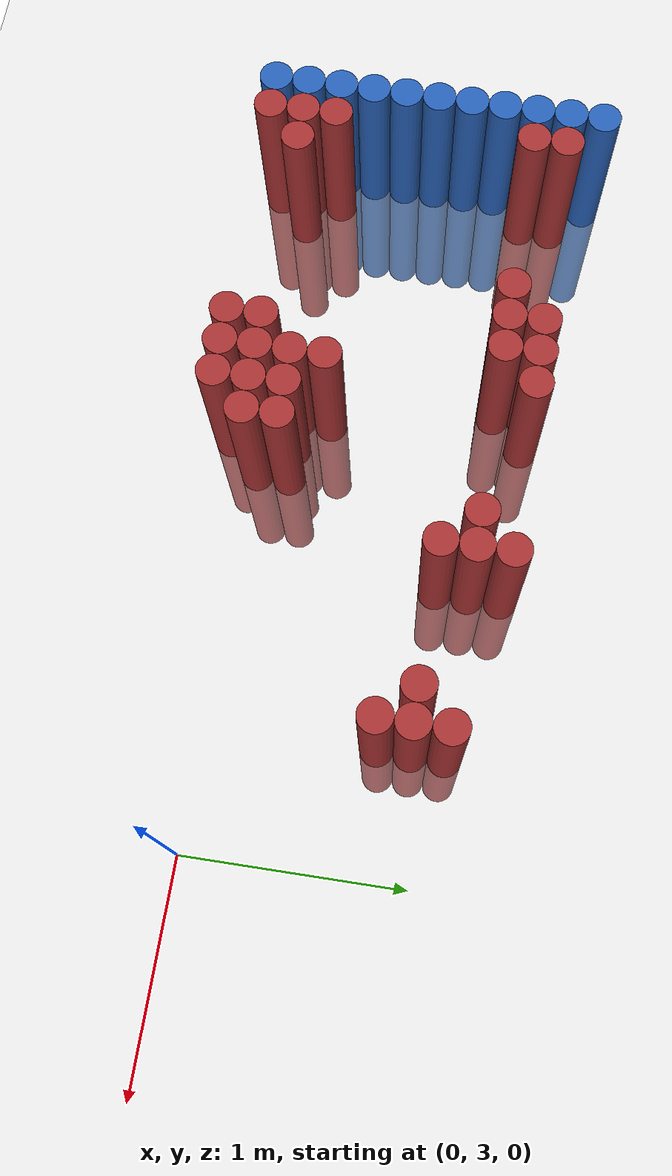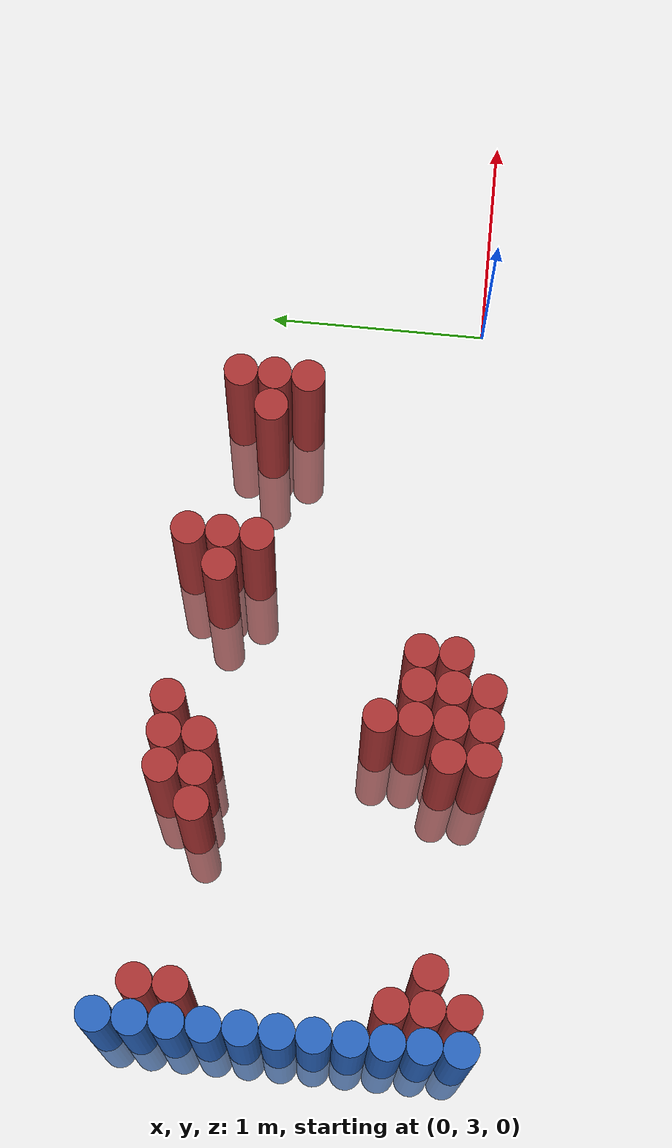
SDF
<sdf version="1.6">
 <world name="default">
  <model name="ground_plane">
   <static>1</static>
   <link name="link">
    <collision name="collision">
     <geometry><plane><normal>0 0 1</normal><size>100 100</size></plane></geometry>
     <surface><friction><ode><mu>100</mu><mu2>50</mu2></ode></friction></surface>
    </collision>
    <visual name="visual">
     <cast_shadows>0</cast_shadows>
     <geometry><plane><normal>0 0 1</normal><size>100 100</size></plane></geometry>
     <material>
      <script><uri>file://media/materials/scripts/gazebo.material</uri><name>Gazebo/Grey</name></script>
     </material>
    </visual>
   </link>
  </model>
  <model name="unit_cylinder_155">
   <static>1</static>
   <pose>-3.425000 3.025000 0.000000 0.000000 0.000000 0.000000</pose>
   <link name="link">
    <inertial>
     <mass>1</mass>
     <inertia><ixx>0.145833</ixx><ixy>0</ixy><ixz>0</ixz><iyy>0.145833</iyy><iyz>0</iyz><izz>0.125</izz></inertia>
    </inertial>
    <collision name="collision">
     <geometry><cylinder><radius>0.075000</radius><length>1.5</length></cylinder></geometry>
    </collision>
    <visual name="visual">
     <geometry><cylinder><radius>0.075000</radius><length>1.5</length></cylinder></geometry>
     <material>
      <ambient>0.152000 0.379000 0.720000 1</ambient>
      <diffuse>0.152000 0.379000 0.720000 1</diffuse>
     </material>
     <material>
      <script><name>Gazebo/Grey</name><uri>file://media/materials/scripts/gazebo.material</uri></script>
     </material>
    </visual>
   </link>
  </model>
  <model name="unit_cylinder_157">
   <static>1</static>
   <pose>-3.425000 3.175000 0.000000 0.000000 0.000000 0.000000</pose>
   <link name="link">
    <inertial>
     <mass>1</mass>
     <inertia><ixx>0.145833</ixx><ixy>0</ixy><ixz>0</ixz><iyy>0.145833</iyy><iyz>0</iyz><izz>0.125</izz></inertia>
    </inertial>
    <collision name="collision">
     <geometry><cylinder><radius>0.075000</radius><length>1.5</length></cylinder></geometry>
    </collision>
    <visual name="visual">
     <geometry><cylinder><radius>0.075000</radius><length>1.5</length></cylinder></geometry>
     <material>
      <ambient>0.152000 0.379000 0.720000 1</ambient>
      <diffuse>0.152000 0.379000 0.720000 1</diffuse>
     </material>
     <material>
      <script><name>Gazebo/Grey</name><uri>file://media/materials/scripts/gazebo.material</uri></script>
     </material>
    </visual>
   </link>
  </model>
  <model name="unit_cylinder_159">
   <static>1</static>
   <pose>-3.425000 3.325000 0.000000 0.000000 0.000000 0.000000</pose>
   <link name="link">
    <inertial>
     <mass>1</mass>
     <inertia><ixx>0.145833</ixx><ixy>0</ixy><ixz>0</ixz><iyy>0.145833</iyy><iyz>0</iyz><izz>0.125</izz></inertia>
    </inertial>
    <collision name="collision">
     <geometry><cylinder><radius>0.075000</radius><length>1.5</length></cylinder></geometry>
    </collision>
    <visual name="visual">
     <geometry><cylinder><radius>0.075000</radius><length>1.5</length></cylinder></geometry>
     <material>
      <ambient>0.152000 0.379000 0.720000 1</ambient>
      <diffuse>0.152000 0.379000 0.720000 1</diffuse>
     </material>
     <material>
      <script><name>Gazebo/Grey</name><uri>file://media/materials/scripts/gazebo.material</uri></script>
     </material>
    </visual>
   </link>
  </model>
  <model name="unit_cylinder_161">
   <static>1</static>
   <pose>-3.425000 3.475000 0.000000 0.000000 0.000000 0.000000</pose>
   <link name="link">
    <inertial>
     <mass>1</mass>
     <inertia><ixx>0.145833</ixx><ixy>0</ixy><ixz>0</ixz><iyy>0.145833</iyy><iyz>0</iyz><izz>0.125</izz></inertia>
    </inertial>
    <collision name="collision">
     <geometry><cylinder><radius>0.075000</radius><length>1.5</length></cylinder></geometry>
    </collision>
    <visual name="visual">
     <geometry><cylinder><radius>0.075000</radius><length>1.5</length></cylinder></geometry>
     <material>
      <ambient>0.152000 0.379000 0.720000 1</ambient>
      <diffuse>0.152000 0.379000 0.720000 1</diffuse>
     </material>
     <material>
      <script><name>Gazebo/Grey</name><uri>file://media/materials/scripts/gazebo.material</uri></script>
     </material>
    </visual>
   </link>
  </model>
  <model name="unit_cylinder_163">
   <static>1</static>
   <pose>-3.425000 3.625000 0.000000 0.000000 0.000000 0.000000</pose>
   <link name="link">
    <inertial>
     <mass>1</mass>
     <inertia><ixx>0.145833</ixx><ixy>0</ixy><ixz>0</ixz><iyy>0.145833</iyy><iyz>0</iyz><izz>0.125</izz></inertia>
    </inertial>
    <collision name="collision">
     <geometry><cylinder><radius>0.075000</radius><length>1.5</length></cylinder></geometry>
    </collision>
    <visual name="visual">
     <geometry><cylinder><radius>0.075000</radius><length>1.5</length></cylinder></geometry>
     <material>
      <ambient>0.152000 0.379000 0.720000 1</ambient>
      <diffuse>0.152000 0.379000 0.720000 1</diffuse>
     </material>
     <material>
      <script><name>Gazebo/Grey</name><uri>file://media/materials/scripts/gazebo.material</uri></script>
     </material>
    </visual>
   </link>
  </model>
  <model name="unit_cylinder_165">
   <static>1</static>
   <pose>-3.425000 3.775000 0.000000 0.000000 0.000000 0.000000</pose>
   <link name="link">
    <inertial>
     <mass>1</mass>
     <inertia><ixx>0.145833</ixx><ixy>0</ixy><ixz>0</ixz><iyy>0.145833</iyy><iyz>0</iyz><izz>0.125</izz></inertia>
    </inertial>
    <collision name="collision">
     <geometry><cylinder><radius>0.075000</radius><length>1.5</length></cylinder></geometry>
    </collision>
    <visual name="visual">
     <geometry><cylinder><radius>0.075000</radius><length>1.5</length></cylinder></geometry>
     <material>
      <ambient>0.152000 0.379000 0.720000 1</ambient>
      <diffuse>0.152000 0.379000 0.720000 1</diffuse>
     </material>
     <material>
      <script><name>Gazebo/Grey</name><uri>file://media/materials/scripts/gazebo.material</uri></script>
     </material>
    </visual>
   </link>
  </model>
  <model name="unit_cylinder_167">
   <static>1</static>
   <pose>-3.425000 3.925000 0.000000 0.000000 0.000000 0.000000</pose>
   <link name="link">
    <inertial>
     <mass>1</mass>
     <inertia><ixx>0.145833</ixx><ixy>0</ixy><ixz>0</ixz><iyy>0.145833</iyy><iyz>0</iyz><izz>0.125</izz></inertia>
    </inertial>
    <collision name="collision">
     <geometry><cylinder><radius>0.075000</radius><length>1.5</length></cylinder></geometry>
    </collision>
    <visual name="visual">
     <geometry><cylinder><radius>0.075000</radius><length>1.5</length></cylinder></geometry>
     <material>
      <ambient>0.152000 0.379000 0.720000 1</ambient>
      <diffuse>0.152000 0.379000 0.720000 1</diffuse>
     </material>
     <material>
      <script><name>Gazebo/Grey</name><uri>file://media/materials/scripts/gazebo.material</uri></script>
     </material>
    </visual>
   </link>
  </model>
  <model name="unit_cylinder_169">
   <static>1</static>
   <pose>-3.425000 4.075000 0.000000 0.000000 0.000000 0.000000</pose>
   <link name="link">
    <inertial>
     <mass>1</mass>
     <inertia><ixx>0.145833</ixx><ixy>0</ixy><ixz>0</ixz><iyy>0.145833</iyy><iyz>0</iyz><izz>0.125</izz></inertia>
    </inertial>
    <collision name="collision">
     <geometry><cylinder><radius>0.075000</radius><length>1.5</length></cylinder></geometry>
    </collision>
    <visual name="visual">
     <geometry><cylinder><radius>0.075000</radius><length>1.5</length></cylinder></geometry>
     <material>
      <ambient>0.152000 0.379000 0.720000 1</ambient>
      <diffuse>0.152000 0.379000 0.720000 1</diffuse>
     </material>
     <material>
      <script><name>Gazebo/Grey</name><uri>file://media/materials/scripts/gazebo.material</uri></script>
     </material>
    </visual>
   </link>
  </model>
  <model name="unit_cylinder_171">
   <static>1</static>
   <pose>-3.425000 4.225000 0.000000 0.000000 0.000000 0.000000</pose>
   <link name="link">
    <inertial>
     <mass>1</mass>
     <inertia><ixx>0.145833</ixx><ixy>0</ixy><ixz>0</ixz><iyy>0.145833</iyy><iyz>0</iyz><izz>0.125</izz></inertia>
    </inertial>
    <collision name="collision">
     <geometry><cylinder><radius>0.075000</radius><length>1.5</length></cylinder></geometry>
    </collision>
    <visual name="visual">
     <geometry><cylinder><radius>0.075000</radius><length>1.5</length></cylinder></geometry>
     <material>
      <ambient>0.152000 0.379000 0.720000 1</ambient>
      <diffuse>0.152000 0.379000 0.720000 1</diffuse>
     </material>
     <material>
      <script><name>Gazebo/Grey</name><uri>file://media/materials/scripts/gazebo.material</uri></script>
     </material>
    </visual>
   </link>
  </model>
  <model name="unit_cylinder_173">
   <static>1</static>
   <pose>-3.425000 4.375000 0.000000 0.000000 0.000000 0.000000</pose>
   <link name="link">
    <inertial>
     <mass>1</mass>
     <inertia><ixx>0.145833</ixx><ixy>0</ixy><ixz>0</ixz><iyy>0.145833</iyy><iyz>0</iyz><izz>0.125</izz></inertia>
    </inertial>
    <collision name="collision">
     <geometry><cylinder><radius>0.075000</radius><length>1.5</length></cylinder></geometry>
    </collision>
    <visual name="visual">
     <geometry><cylinder><radius>0.075000</radius><length>1.5</length></cylinder></geometry>
     <material>
      <ambient>0.152000 0.379000 0.720000 1</ambient>
      <diffuse>0.152000 0.379000 0.720000 1</diffuse>
     </material>
     <material>
      <script><name>Gazebo/Grey</name><uri>file://media/materials/scripts/gazebo.material</uri></script>
     </material>
    </visual>
   </link>
  </model>
  <model name="unit_cylinder_240">
   <static>1</static>
   <pose>-3.425000 2.875000 0.000000 0.000000 0.000000 0.000000</pose>
   <link name="link">
    <inertial>
     <mass>1</mass>
     <inertia><ixx>0.145833</ixx><ixy>0</ixy><ixz>0</ixz><iyy>0.145833</iyy><iyz>0</iyz><izz>0.125</izz></inertia>
    </inertial>
    <collision name="collision">
     <geometry><cylinder><radius>0.075000</radius><length>1.5</length></cylinder></geometry>
    </collision>
    <visual name="visual">
     <geometry><cylinder><radius>0.075000</radius><length>1.5</length></cylinder></geometry>
     <material>
      <ambient>0.152000 0.379000 0.720000 1</ambient>
      <diffuse>0.152000 0.379000 0.720000 1</diffuse>
     </material>
     <material>
      <script><name>Gazebo/Grey</name><uri>file://media/materials/scripts/gazebo.material</uri></script>
     </material>
    </visual>
   </link>
  </model>
  <model name="unit_cylinder_241">
   <static>1</static>
   <pose>-3.425000 3.025000 0.000000 0.000000 0.000000 0.000000</pose>
   <link name="link">
    <inertial>
     <mass>1</mass>
     <inertia><ixx>0.145833</ixx><ixy>0</ixy><ixz>0</ixz><iyy>0.145833</iyy><iyz>0</iyz><izz>0.125</izz></inertia>
    </inertial>
    <collision name="collision">
     <geometry><cylinder><radius>0.075000</radius><length>1.5</length></cylinder></geometry>
    </collision>
    <visual name="visual">
     <geometry><cylinder><radius>0.075000</radius><length>1.5</length></cylinder></geometry>
     <material>
      <ambient>0.152000 0.379000 0.720000 1</ambient>
      <diffuse>0.152000 0.379000 0.720000 1</diffuse>
     </material>
     <material>
      <script><name>Gazebo/Grey</name><uri>file://media/materials/scripts/gazebo.material</uri></script>
     </material>
    </visual>
   </link>
  </model>
  <model name="unit_cylinder_242">
   <static>1</static>
   <pose>-3.425000 3.175000 0.000000 0.000000 0.000000 0.000000</pose>
   <link name="link">
    <inertial>
     <mass>1</mass>
     <inertia><ixx>0.145833</ixx><ixy>0</ixy><ixz>0</ixz><iyy>0.145833</iyy><iyz>0</iyz><izz>0.125</izz></inertia>
    </inertial>
    <collision name="collision">
     <geometry><cylinder><radius>0.075000</radius><length>1.5</length></cylinder></geometry>
    </collision>
    <visual name="visual">
     <geometry><cylinder><radius>0.075000</radius><length>1.5</length></cylinder></geometry>
     <material>
      <ambient>0.152000 0.379000 0.720000 1</ambient>
      <diffuse>0.152000 0.379000 0.720000 1</diffuse>
     </material>
     <material>
      <script><name>Gazebo/Grey</name><uri>file://media/materials/scripts/gazebo.material</uri></script>
     </material>
    </visual>
   </link>
  </model>
  <model name="unit_cylinder_243">
   <static>1</static>
   <pose>-3.425000 3.325000 0.000000 0.000000 0.000000 0.000000</pose>
   <link name="link">
    <inertial>
     <mass>1</mass>
     <inertia><ixx>0.145833</ixx><ixy>0</ixy><ixz>0</ixz><iyy>0.145833</iyy><iyz>0</iyz><izz>0.125</izz></inertia>
    </inertial>
    <collision name="collision">
     <geometry><cylinder><radius>0.075000</radius><length>1.5</length></cylinder></geometry>
    </collision>
    <visual name="visual">
     <geometry><cylinder><radius>0.075000</radius><length>1.5</length></cylinder></geometry>
     <material>
      <ambient>0.152000 0.379000 0.720000 1</ambient>
      <diffuse>0.152000 0.379000 0.720000 1</diffuse>
     </material>
     <material>
      <script><name>Gazebo/Grey</name><uri>file://media/materials/scripts/gazebo.material</uri></script>
     </material>
    </visual>
   </link>
  </model>
  <model name="unit_cylinder_244">
   <static>1</static>
   <pose>-3.425000 3.475000 0.000000 0.000000 0.000000 0.000000</pose>
   <link name="link">
    <inertial>
     <mass>1</mass>
     <inertia><ixx>0.145833</ixx><ixy>0</ixy><ixz>0</ixz><iyy>0.145833</iyy><iyz>0</iyz><izz>0.125</izz></inertia>
    </inertial>
    <collision name="collision">
     <geometry><cylinder><radius>0.075000</radius><length>1.5</length></cylinder></geometry>
    </collision>
    <visual name="visual">
     <geometry><cylinder><radius>0.075000</radius><length>1.5</length></cylinder></geometry>
     <material>
      <ambient>0.152000 0.379000 0.720000 1</ambient>
      <diffuse>0.152000 0.379000 0.720000 1</diffuse>
     </material>
     <material>
      <script><name>Gazebo/Grey</name><uri>file://media/materials/scripts/gazebo.material</uri></script>
     </material>
    </visual>
   </link>
  </model>
  <model name="unit_cylinder_245">
   <static>1</static>
   <pose>-3.425000 3.625000 0.000000 0.000000 0.000000 0.000000</pose>
   <link name="link">
    <inertial>
     <mass>1</mass>
     <inertia><ixx>0.145833</ixx><ixy>0</ixy><ixz>0</ixz><iyy>0.145833</iyy><iyz>0</iyz><izz>0.125</izz></inertia>
    </inertial>
    <collision name="collision">
     <geometry><cylinder><radius>0.075000</radius><length>1.5</length></cylinder></geometry>
    </collision>
    <visual name="visual">
     <geometry><cylinder><radius>0.075000</radius><length>1.5</length></cylinder></geometry>
     <material>
      <ambient>0.152000 0.379000 0.720000 1</ambient>
      <diffuse>0.152000 0.379000 0.720000 1</diffuse>
     </material>
     <material>
      <script><name>Gazebo/Grey</name><uri>file://media/materials/scripts/gazebo.material</uri></script>
     </material>
    </visual>
   </link>
  </model>
  <model name="unit_cylinder_246">
   <static>1</static>
   <pose>-3.425000 3.775000 0.000000 0.000000 0.000000 0.000000</pose>
   <link name="link">
    <inertial>
     <mass>1</mass>
     <inertia><ixx>0.145833</ixx><ixy>0</ixy><ixz>0</ixz><iyy>0.145833</iyy><iyz>0</iyz><izz>0.125</izz></inertia>
    </inertial>
    <collision name="collision">
     <geometry><cylinder><radius>0.075000</radius><length>1.5</length></cylinder></geometry>
    </collision>
    <visual name="visual">
     <geometry><cylinder><radius>0.075000</radius><length>1.5</length></cylinder></geometry>
     <material>
      <ambient>0.152000 0.379000 0.720000 1</ambient>
      <diffuse>0.152000 0.379000 0.720000 1</diffuse>
     </material>
     <material>
      <script><name>Gazebo/Grey</name><uri>file://media/materials/scripts/gazebo.material</uri></script>
     </material>
    </visual>
   </link>
  </model>
  <model name="unit_cylinder_247">
   <static>1</static>
   <pose>-3.425000 3.925000 0.000000 0.000000 0.000000 0.000000</pose>
   <link name="link">
    <inertial>
     <mass>1</mass>
     <inertia><ixx>0.145833</ixx><ixy>0</ixy><ixz>0</ixz><iyy>0.145833</iyy><iyz>0</iyz><izz>0.125</izz></inertia>
    </inertial>
    <collision name="collision">
     <geometry><cylinder><radius>0.075000</radius><length>1.5</length></cylinder></geometry>
    </collision>
    <visual name="visual">
     <geometry><cylinder><radius>0.075000</radius><length>1.5</length></cylinder></geometry>
     <material>
      <ambient>0.152000 0.379000 0.720000 1</ambient>
      <diffuse>0.152000 0.379000 0.720000 1</diffuse>
     </material>
     <material>
      <script><name>Gazebo/Grey</name><uri>file://media/materials/scripts/gazebo.material</uri></script>
     </material>
    </visual>
   </link>
  </model>
  <model name="unit_cylinder_248">
   <static>1</static>
   <pose>-3.425000 4.075000 0.000000 0.000000 0.000000 0.000000</pose>
   <link name="link">
    <inertial>
     <mass>1</mass>
     <inertia><ixx>0.145833</ixx><ixy>0</ixy><ixz>0</ixz><iyy>0.145833</iyy><iyz>0</iyz><izz>0.125</izz></inertia>
    </inertial>
    <collision name="collision">
     <geometry><cylinder><radius>0.075000</radius><length>1.5</length></cylinder></geometry>
    </collision>
    <visual name="visual">
     <geometry><cylinder><radius>0.075000</radius><length>1.5</length></cylinder></geometry>
     <material>
      <ambient>0.152000 0.379000 0.720000 1</ambient>
      <diffuse>0.152000 0.379000 0.720000 1</diffuse>
     </material>
     <material>
      <script><name>Gazebo/Grey</name><uri>file://media/materials/scripts/gazebo.material</uri></script>
     </material>
    </visual>
   </link>
  </model>
  <model name="unit_cylinder_249">
   <static>1</static>
   <pose>-3.425000 4.225000 0.000000 0.000000 0.000000 0.000000</pose>
   <link name="link">
    <inertial>
     <mass>1</mass>
     <inertia><ixx>0.145833</ixx><ixy>0</ixy><ixz>0</ixz><iyy>0.145833</iyy><iyz>0</iyz><izz>0.125</izz></inertia>
    </inertial>
    <collision name="collision">
     <geometry><cylinder><radius>0.075000</radius><length>1.5</length></cylinder></geometry>
    </collision>
    <visual name="visual">
     <geometry><cylinder><radius>0.075000</radius><length>1.5</length></cylinder></geometry>
     <material>
      <ambient>0.152000 0.379000 0.720000 1</ambient>
      <diffuse>0.152000 0.379000 0.720000 1</diffuse>
     </material>
     <material>
      <script><name>Gazebo/Grey</name><uri>file://media/materials/scripts/gazebo.material</uri></script>
     </material>
    </visual>
   </link>
  </model>
  <model name="unit_cylinder_250">
   <static>1</static>
   <pose>-3.425000 4.375000 0.000000 0.000000 0.000000 0.000000</pose>
   <link name="link">
    <inertial>
     <mass>1</mass>
     <inertia><ixx>0.145833</ixx><ixy>0</ixy><ixz>0</ixz><iyy>0.145833</iyy><iyz>0</iyz><izz>0.125</izz></inertia>
    </inertial>
    <collision name="collision">
     <geometry><cylinder><radius>0.075000</radius><length>1.5</length></cylinder></geometry>
    </collision>
    <visual name="visual">
     <geometry><cylinder><radius>0.075000</radius><length>1.5</length></cylinder></geometry>
     <material>
      <ambient>0.152000 0.379000 0.720000 1</ambient>
      <diffuse>0.152000 0.379000 0.720000 1</diffuse>
     </material>
     <material>
      <script><name>Gazebo/Grey</name><uri>file://media/materials/scripts/gazebo.material</uri></script>
     </material>
    </visual>
   </link>
  </model>
  <model name="unit_cylinder_271">
   <static>1</static>
   <pose>-3.275000 2.875000 0.000000 0.000000 0.000000 0.000000</pose>
   <link name="link">
    <inertial>
     <mass>1</mass>
     <inertia><ixx>0.145833</ixx><ixy>0</ixy><ixz>0</ixz><iyy>0.145833</iyy><iyz>0</iyz><izz>0.125</izz></inertia>
    </inertial>
    <collision name="collision">
     <geometry><cylinder><radius>0.075000</radius><length>1.5</length></cylinder></geometry>
    </collision>
    <visual name="visual">
     <geometry><cylinder><radius>0.075000</radius><length>1.5</length></cylinder></geometry>
     <material>
      <ambient>0.648000 0.192000 0.192000 1</ambient>
      <diffuse>0.648000 0.192000 0.192000 1</diffuse>
     </material>
     <material>
      <script><name>Gazebo/Grey</name><uri>file://media/materials/scripts/gazebo.material</uri></script>
     </material>
    </visual>
   </link>
  </model>
  <model name="unit_cylinder_272">
   <static>1</static>
   <pose>-3.275000 3.025000 0.000000 0.000000 0.000000 0.000000</pose>
   <link name="link">
    <inertial>
     <mass>1</mass>
     <inertia><ixx>0.145833</ixx><ixy>0</ixy><ixz>0</ixz><iyy>0.145833</iyy><iyz>0</iyz><izz>0.125</izz></inertia>
    </inertial>
    <collision name="collision">
     <geometry><cylinder><radius>0.075000</radius><length>1.5</length></cylinder></geometry>
    </collision>
    <visual name="visual">
     <geometry><cylinder><radius>0.075000</radius><length>1.5</length></cylinder></geometry>
     <material>
      <ambient>0.648000 0.192000 0.192000 1</ambient>
      <diffuse>0.648000 0.192000 0.192000 1</diffuse>
     </material>
     <material>
      <script><name>Gazebo/Grey</name><uri>file://media/materials/scripts/gazebo.material</uri></script>
     </material>
    </visual>
   </link>
  </model>
  <model name="unit_cylinder_273">
   <static>1</static>
   <pose>-3.275000 3.175000 0.000000 0.000000 0.000000 0.000000</pose>
   <link name="link">
    <inertial>
     <mass>1</mass>
     <inertia><ixx>0.145833</ixx><ixy>0</ixy><ixz>0</ixz><iyy>0.145833</iyy><iyz>0</iyz><izz>0.125</izz></inertia>
    </inertial>
    <collision name="collision">
     <geometry><cylinder><radius>0.075000</radius><length>1.5</length></cylinder></geometry>
    </collision>
    <visual name="visual">
     <geometry><cylinder><radius>0.075000</radius><length>1.5</length></cylinder></geometry>
     <material>
      <ambient>0.648000 0.192000 0.192000 1</ambient>
      <diffuse>0.648000 0.192000 0.192000 1</diffuse>
     </material>
     <material>
      <script><name>Gazebo/Grey</name><uri>file://media/materials/scripts/gazebo.material</uri></script>
     </material>
    </visual>
   </link>
  </model>
  <model name="unit_cylinder_274">
   <static>1</static>
   <pose>-3.275000 4.075000 0.000000 0.000000 0.000000 0.000000</pose>
   <link name="link">
    <inertial>
     <mass>1</mass>
     <inertia><ixx>0.145833</ixx><ixy>0</ixy><ixz>0</ixz><iyy>0.145833</iyy><iyz>0</iyz><izz>0.125</izz></inertia>
    </inertial>
    <collision name="collision">
     <geometry><cylinder><radius>0.075000</radius><length>1.5</length></cylinder></geometry>
    </collision>
    <visual name="visual">
     <geometry><cylinder><radius>0.075000</radius><length>1.5</length></cylinder></geometry>
     <material>
      <ambient>0.648000 0.192000 0.192000 1</ambient>
      <diffuse>0.648000 0.192000 0.192000 1</diffuse>
     </material>
     <material>
      <script><name>Gazebo/Grey</name><uri>file://media/materials/scripts/gazebo.material</uri></script>
     </material>
    </visual>
   </link>
  </model>
  <model name="unit_cylinder_275">
   <static>1</static>
   <pose>-3.275000 4.225000 0.000000 0.000000 0.000000 0.000000</pose>
   <link name="link">
    <inertial>
     <mass>1</mass>
     <inertia><ixx>0.145833</ixx><ixy>0</ixy><ixz>0</ixz><iyy>0.145833</iyy><iyz>0</iyz><izz>0.125</izz></inertia>
    </inertial>
    <collision name="collision">
     <geometry><cylinder><radius>0.075000</radius><length>1.5</length></cylinder></geometry>
    </collision>
    <visual name="visual">
     <geometry><cylinder><radius>0.075000</radius><length>1.5</length></cylinder></geometry>
     <material>
      <ambient>0.648000 0.192000 0.192000 1</ambient>
      <diffuse>0.648000 0.192000 0.192000 1</diffuse>
     </material>
     <material>
      <script><name>Gazebo/Grey</name><uri>file://media/materials/scripts/gazebo.material</uri></script>
     </material>
    </visual>
   </link>
  </model>
  <model name="unit_cylinder_290">
   <static>1</static>
   <pose>-3.125000 3.025000 0.000000 0.000000 0.000000 0.000000</pose>
   <link name="link">
    <inertial>
     <mass>1</mass>
     <inertia><ixx>0.145833</ixx><ixy>0</ixy><ixz>0</ixz><iyy>0.145833</iyy><iyz>0</iyz><izz>0.125</izz></inertia>
    </inertial>
    <collision name="collision">
     <geometry><cylinder><radius>0.075000</radius><length>1.5</length></cylinder></geometry>
    </collision>
    <visual name="visual">
     <geometry><cylinder><radius>0.075000</radius><length>1.5</length></cylinder></geometry>
     <material>
      <ambient>0.648000 0.192000 0.192000 1</ambient>
      <diffuse>0.648000 0.192000 0.192000 1</diffuse>
     </material>
     <material>
      <script><name>Gazebo/Grey</name><uri>file://media/materials/scripts/gazebo.material</uri></script>
     </material>
    </visual>
   </link>
  </model>
  <model name="unit_cylinder_311">
   <static>1</static>
   <pose>-2.525000 4.075000 0.000000 0.000000 0.000000 0.000000</pose>
   <link name="link">
    <inertial>
     <mass>1</mass>
     <inertia><ixx>0.145833</ixx><ixy>0</ixy><ixz>0</ixz><iyy>0.145833</iyy><iyz>0</iyz><izz>0.125</izz></inertia>
    </inertial>
    <collision name="collision">
     <geometry><cylinder><radius>0.075000</radius><length>1.5</length></cylinder></geometry>
    </collision>
    <visual name="visual">
     <geometry><cylinder><radius>0.075000</radius><length>1.5</length></cylinder></geometry>
     <material>
      <ambient>0.648000 0.192000 0.192000 1</ambient>
      <diffuse>0.648000 0.192000 0.192000 1</diffuse>
     </material>
     <material>
      <script><name>Gazebo/Grey</name><uri>file://media/materials/scripts/gazebo.material</uri></script>
     </material>
    </visual>
   </link>
  </model>
  <model name="unit_cylinder_313">
   <static>1</static>
   <pose>-2.375000 4.075000 0.000000 0.000000 0.000000 0.000000</pose>
   <link name="link">
    <inertial>
     <mass>1</mass>
     <inertia><ixx>0.145833</ixx><ixy>0</ixy><ixz>0</ixz><iyy>0.145833</iyy><iyz>0</iyz><izz>0.125</izz></inertia>
    </inertial>
    <collision name="collision">
     <geometry><cylinder><radius>0.075000</radius><length>1.5</length></cylinder></geometry>
    </collision>
    <visual name="visual">
     <geometry><cylinder><radius>0.075000</radius><length>1.5</length></cylinder></geometry>
     <material>
      <ambient>0.648000 0.192000 0.192000 1</ambient>
      <diffuse>0.648000 0.192000 0.192000 1</diffuse>
     </material>
     <material>
      <script><name>Gazebo/Grey</name><uri>file://media/materials/scripts/gazebo.material</uri></script>
     </material>
    </visual>
   </link>
  </model>
  <model name="unit_cylinder_314">
   <static>1</static>
   <pose>-2.375000 4.225000 0.000000 0.000000 0.000000 0.000000</pose>
   <link name="link">
    <inertial>
     <mass>1</mass>
     <inertia><ixx>0.145833</ixx><ixy>0</ixy><ixz>0</ixz><iyy>0.145833</iyy><iyz>0</iyz><izz>0.125</izz></inertia>
    </inertial>
    <collision name="collision">
     <geometry><cylinder><radius>0.075000</radius><length>1.5</length></cylinder></geometry>
    </collision>
    <visual name="visual">
     <geometry><cylinder><radius>0.075000</radius><length>1.5</length></cylinder></geometry>
     <material>
      <ambient>0.648000 0.192000 0.192000 1</ambient>
      <diffuse>0.648000 0.192000 0.192000 1</diffuse>
     </material>
     <material>
      <script><name>Gazebo/Grey</name><uri>file://media/materials/scripts/gazebo.material</uri></script>
     </material>
    </visual>
   </link>
  </model>
  <model name="unit_cylinder_323">
   <static>1</static>
   <pose>-2.225000 2.875000 0.000000 0.000000 0.000000 0.000000</pose>
   <link name="link">
    <inertial>
     <mass>1</mass>
     <inertia><ixx>0.145833</ixx><ixy>0</ixy><ixz>0</ixz><iyy>0.145833</iyy><iyz>0</iyz><izz>0.125</izz></inertia>
    </inertial>
    <collision name="collision">
     <geometry><cylinder><radius>0.075000</radius><length>1.5</length></cylinder></geometry>
    </collision>
    <visual name="visual">
     <geometry><cylinder><radius>0.075000</radius><length>1.5</length></cylinder></geometry>
     <material>
      <ambient>0.648000 0.192000 0.192000 1</ambient>
      <diffuse>0.648000 0.192000 0.192000 1</diffuse>
     </material>
     <material>
      <script><name>Gazebo/Grey</name><uri>file://media/materials/scripts/gazebo.material</uri></script>
     </material>
    </visual>
   </link>
  </model>
  <model name="unit_cylinder_324">
   <static>1</static>
   <pose>-2.225000 3.025000 0.000000 0.000000 0.000000 0.000000</pose>
   <link name="link">
    <inertial>
     <mass>1</mass>
     <inertia><ixx>0.145833</ixx><ixy>0</ixy><ixz>0</ixz><iyy>0.145833</iyy><iyz>0</iyz><izz>0.125</izz></inertia>
    </inertial>
    <collision name="collision">
     <geometry><cylinder><radius>0.075000</radius><length>1.5</length></cylinder></geometry>
    </collision>
    <visual name="visual">
     <geometry><cylinder><radius>0.075000</radius><length>1.5</length></cylinder></geometry>
     <material>
      <ambient>0.648000 0.192000 0.192000 1</ambient>
      <diffuse>0.648000 0.192000 0.192000 1</diffuse>
     </material>
     <material>
      <script><name>Gazebo/Grey</name><uri>file://media/materials/scripts/gazebo.material</uri></script>
     </material>
    </visual>
   </link>
  </model>
  <model name="unit_cylinder_325">
   <static>1</static>
   <pose>-2.225000 4.075000 0.000000 0.000000 0.000000 0.000000</pose>
   <link name="link">
    <inertial>
     <mass>1</mass>
     <inertia><ixx>0.145833</ixx><ixy>0</ixy><ixz>0</ixz><iyy>0.145833</iyy><iyz>0</iyz><izz>0.125</izz></inertia>
    </inertial>
    <collision name="collision">
     <geometry><cylinder><radius>0.075000</radius><length>1.5</length></cylinder></geometry>
    </collision>
    <visual name="visual">
     <geometry><cylinder><radius>0.075000</radius><length>1.5</length></cylinder></geometry>
     <material>
      <ambient>0.648000 0.192000 0.192000 1</ambient>
      <diffuse>0.648000 0.192000 0.192000 1</diffuse>
     </material>
     <material>
      <script><name>Gazebo/Grey</name><uri>file://media/materials/scripts/gazebo.material</uri></script>
     </material>
    </visual>
   </link>
  </model>
  <model name="unit_cylinder_326">
   <static>1</static>
   <pose>-2.225000 4.225000 0.000000 0.000000 0.000000 0.000000</pose>
   <link name="link">
    <inertial>
     <mass>1</mass>
     <inertia><ixx>0.145833</ixx><ixy>0</ixy><ixz>0</ixz><iyy>0.145833</iyy><iyz>0</iyz><izz>0.125</izz></inertia>
    </inertial>
    <collision name="collision">
     <geometry><cylinder><radius>0.075000</radius><length>1.5</length></cylinder></geometry>
    </collision>
    <visual name="visual">
     <geometry><cylinder><radius>0.075000</radius><length>1.5</length></cylinder></geometry>
     <material>
      <ambient>0.648000 0.192000 0.192000 1</ambient>
      <diffuse>0.648000 0.192000 0.192000 1</diffuse>
     </material>
     <material>
      <script><name>Gazebo/Grey</name><uri>file://media/materials/scripts/gazebo.material</uri></script>
     </material>
    </visual>
   </link>
  </model>
  <model name="unit_cylinder_336">
   <static>1</static>
   <pose>-2.075000 2.875000 0.000000 0.000000 0.000000 0.000000</pose>
   <link name="link">
    <inertial>
     <mass>1</mass>
     <inertia><ixx>0.145833</ixx><ixy>0</ixy><ixz>0</ixz><iyy>0.145833</iyy><iyz>0</iyz><izz>0.125</izz></inertia>
    </inertial>
    <collision name="collision">
     <geometry><cylinder><radius>0.075000</radius><length>1.5</length></cylinder></geometry>
    </collision>
    <visual name="visual">
     <geometry><cylinder><radius>0.075000</radius><length>1.5</length></cylinder></geometry>
     <material>
      <ambient>0.648000 0.192000 0.192000 1</ambient>
      <diffuse>0.648000 0.192000 0.192000 1</diffuse>
     </material>
     <material>
      <script><name>Gazebo/Grey</name><uri>file://media/materials/scripts/gazebo.material</uri></script>
     </material>
    </visual>
   </link>
  </model>
  <model name="unit_cylinder_337">
   <static>1</static>
   <pose>-2.075000 3.025000 0.000000 0.000000 0.000000 0.000000</pose>
   <link name="link">
    <inertial>
     <mass>1</mass>
     <inertia><ixx>0.145833</ixx><ixy>0</ixy><ixz>0</ixz><iyy>0.145833</iyy><iyz>0</iyz><izz>0.125</izz></inertia>
    </inertial>
    <collision name="collision">
     <geometry><cylinder><radius>0.075000</radius><length>1.5</length></cylinder></geometry>
    </collision>
    <visual name="visual">
     <geometry><cylinder><radius>0.075000</radius><length>1.5</length></cylinder></geometry>
     <material>
      <ambient>0.648000 0.192000 0.192000 1</ambient>
      <diffuse>0.648000 0.192000 0.192000 1</diffuse>
     </material>
     <material>
      <script><name>Gazebo/Grey</name><uri>file://media/materials/scripts/gazebo.material</uri></script>
     </material>
    </visual>
   </link>
  </model>
  <model name="unit_cylinder_338">
   <static>1</static>
   <pose>-2.075000 3.175000 0.000000 0.000000 0.000000 0.000000</pose>
   <link name="link">
    <inertial>
     <mass>1</mass>
     <inertia><ixx>0.145833</ixx><ixy>0</ixy><ixz>0</ixz><iyy>0.145833</iyy><iyz>0</iyz><izz>0.125</izz></inertia>
    </inertial>
    <collision name="collision">
     <geometry><cylinder><radius>0.075000</radius><length>1.5</length></cylinder></geometry>
    </collision>
    <visual name="visual">
     <geometry><cylinder><radius>0.075000</radius><length>1.5</length></cylinder></geometry>
     <material>
      <ambient>0.648000 0.192000 0.192000 1</ambient>
      <diffuse>0.648000 0.192000 0.192000 1</diffuse>
     </material>
     <material>
      <script><name>Gazebo/Grey</name><uri>file://media/materials/scripts/gazebo.material</uri></script>
     </material>
    </visual>
   </link>
  </model>
  <model name="unit_cylinder_339">
   <static>1</static>
   <pose>-2.075000 3.325000 0.000000 0.000000 0.000000 0.000000</pose>
   <link name="link">
    <inertial>
     <mass>1</mass>
     <inertia><ixx>0.145833</ixx><ixy>0</ixy><ixz>0</ixz><iyy>0.145833</iyy><iyz>0</iyz><izz>0.125</izz></inertia>
    </inertial>
    <collision name="collision">
     <geometry><cylinder><radius>0.075000</radius><length>1.5</length></cylinder></geometry>
    </collision>
    <visual name="visual">
     <geometry><cylinder><radius>0.075000</radius><length>1.5</length></cylinder></geometry>
     <material>
      <ambient>0.648000 0.192000 0.192000 1</ambient>
      <diffuse>0.648000 0.192000 0.192000 1</diffuse>
     </material>
     <material>
      <script><name>Gazebo/Grey</name><uri>file://media/materials/scripts/gazebo.material</uri></script>
     </material>
    </visual>
   </link>
  </model>
  <model name="unit_cylinder_340">
   <static>1</static>
   <pose>-2.075000 4.225000 0.000000 0.000000 0.000000 0.000000</pose>
   <link name="link">
    <inertial>
     <mass>1</mass>
     <inertia><ixx>0.145833</ixx><ixy>0</ixy><ixz>0</ixz><iyy>0.145833</iyy><iyz>0</iyz><izz>0.125</izz></inertia>
    </inertial>
    <collision name="collision">
     <geometry><cylinder><radius>0.075000</radius><length>1.5</length></cylinder></geometry>
    </collision>
    <visual name="visual">
     <geometry><cylinder><radius>0.075000</radius><length>1.5</length></cylinder></geometry>
     <material>
      <ambient>0.648000 0.192000 0.192000 1</ambient>
      <diffuse>0.648000 0.192000 0.192000 1</diffuse>
     </material>
     <material>
      <script><name>Gazebo/Grey</name><uri>file://media/materials/scripts/gazebo.material</uri></script>
     </material>
    </visual>
   </link>
  </model>
  <model name="unit_cylinder_351">
   <static>1</static>
   <pose>-1.925000 2.875000 0.000000 0.000000 0.000000 0.000000</pose>
   <link name="link">
    <inertial>
     <mass>1</mass>
     <inertia><ixx>0.145833</ixx><ixy>0</ixy><ixz>0</ixz><iyy>0.145833</iyy><iyz>0</iyz><izz>0.125</izz></inertia>
    </inertial>
    <collision name="collision">
     <geometry><cylinder><radius>0.075000</radius><length>1.5</length></cylinder></geometry>
    </collision>
    <visual name="visual">
     <geometry><cylinder><radius>0.075000</radius><length>1.5</length></cylinder></geometry>
     <material>
      <ambient>0.648000 0.192000 0.192000 1</ambient>
      <diffuse>0.648000 0.192000 0.192000 1</diffuse>
     </material>
     <material>
      <script><name>Gazebo/Grey</name><uri>file://media/materials/scripts/gazebo.material</uri></script>
     </material>
    </visual>
   </link>
  </model>
  <model name="unit_cylinder_352">
   <static>1</static>
   <pose>-1.925000 3.025000 0.000000 0.000000 0.000000 0.000000</pose>
   <link name="link">
    <inertial>
     <mass>1</mass>
     <inertia><ixx>0.145833</ixx><ixy>0</ixy><ixz>0</ixz><iyy>0.145833</iyy><iyz>0</iyz><izz>0.125</izz></inertia>
    </inertial>
    <collision name="collision">
     <geometry><cylinder><radius>0.075000</radius><length>1.5</length></cylinder></geometry>
    </collision>
    <visual name="visual">
     <geometry><cylinder><radius>0.075000</radius><length>1.5</length></cylinder></geometry>
     <material>
      <ambient>0.648000 0.192000 0.192000 1</ambient>
      <diffuse>0.648000 0.192000 0.192000 1</diffuse>
     </material>
     <material>
      <script><name>Gazebo/Grey</name><uri>file://media/materials/scripts/gazebo.material</uri></script>
     </material>
    </visual>
   </link>
  </model>
  <model name="unit_cylinder_353">
   <static>1</static>
   <pose>-1.925000 3.175000 0.000000 0.000000 0.000000 0.000000</pose>
   <link name="link">
    <inertial>
     <mass>1</mass>
     <inertia><ixx>0.145833</ixx><ixy>0</ixy><ixz>0</ixz><iyy>0.145833</iyy><iyz>0</iyz><izz>0.125</izz></inertia>
    </inertial>
    <collision name="collision">
     <geometry><cylinder><radius>0.075000</radius><length>1.5</length></cylinder></geometry>
    </collision>
    <visual name="visual">
     <geometry><cylinder><radius>0.075000</radius><length>1.5</length></cylinder></geometry>
     <material>
      <ambient>0.648000 0.192000 0.192000 1</ambient>
      <diffuse>0.648000 0.192000 0.192000 1</diffuse>
     </material>
     <material>
      <script><name>Gazebo/Grey</name><uri>file://media/materials/scripts/gazebo.material</uri></script>
     </material>
    </visual>
   </link>
  </model>
  <model name="unit_cylinder_361">
   <static>1</static>
   <pose>-1.775000 3.025000 0.000000 0.000000 0.000000 0.000000</pose>
   <link name="link">
    <inertial>
     <mass>1</mass>
     <inertia><ixx>0.145833</ixx><ixy>0</ixy><ixz>0</ixz><iyy>0.145833</iyy><iyz>0</iyz><izz>0.125</izz></inertia>
    </inertial>
    <collision name="collision">
     <geometry><cylinder><radius>0.075000</radius><length>1.5</length></cylinder></geometry>
    </collision>
    <visual name="visual">
     <geometry><cylinder><radius>0.075000</radius><length>1.5</length></cylinder></geometry>
     <material>
      <ambient>0.648000 0.192000 0.192000 1</ambient>
      <diffuse>0.648000 0.192000 0.192000 1</diffuse>
     </material>
     <material>
      <script><name>Gazebo/Grey</name><uri>file://media/materials/scripts/gazebo.material</uri></script>
     </material>
    </visual>
   </link>
  </model>
  <model name="unit_cylinder_362">
   <static>1</static>
   <pose>-1.775000 3.175000 0.000000 0.000000 0.000000 0.000000</pose>
   <link name="link">
    <inertial>
     <mass>1</mass>
     <inertia><ixx>0.145833</ixx><ixy>0</ixy><ixz>0</ixz><iyy>0.145833</iyy><iyz>0</iyz><izz>0.125</izz></inertia>
    </inertial>
    <collision name="collision">
     <geometry><cylinder><radius>0.075000</radius><length>1.5</length></cylinder></geometry>
    </collision>
    <visual name="visual">
     <geometry><cylinder><radius>0.075000</radius><length>1.5</length></cylinder></geometry>
     <material>
      <ambient>0.648000 0.192000 0.192000 1</ambient>
      <diffuse>0.648000 0.192000 0.192000 1</diffuse>
     </material>
     <material>
      <script><name>Gazebo/Grey</name><uri>file://media/materials/scripts/gazebo.material</uri></script>
     </material>
    </visual>
   </link>
  </model>
  <model name="unit_cylinder_382">
   <static>1</static>
   <pose>-1.475000 4.075000 0.000000 0.000000 0.000000 0.000000</pose>
   <link name="link">
    <inertial>
     <mass>1</mass>
     <inertia><ixx>0.145833</ixx><ixy>0</ixy><ixz>0</ixz><iyy>0.145833</iyy><iyz>0</iyz><izz>0.125</izz></inertia>
    </inertial>
    <collision name="collision">
     <geometry><cylinder><radius>0.075000</radius><length>1.5</length></cylinder></geometry>
    </collision>
    <visual name="visual">
     <geometry><cylinder><radius>0.075000</radius><length>1.5</length></cylinder></geometry>
     <material>
      <ambient>0.648000 0.192000 0.192000 1</ambient>
      <diffuse>0.648000 0.192000 0.192000 1</diffuse>
     </material>
     <material>
      <script><name>Gazebo/Grey</name><uri>file://media/materials/scripts/gazebo.material</uri></script>
     </material>
    </visual>
   </link>
  </model>
  <model name="unit_cylinder_396">
   <static>1</static>
   <pose>-1.325000 3.925000 0.000000 0.000000 0.000000 0.000000</pose>
   <link name="link">
    <inertial>
     <mass>1</mass>
     <inertia><ixx>0.145833</ixx><ixy>0</ixy><ixz>0</ixz><iyy>0.145833</iyy><iyz>0</iyz><izz>0.125</izz></inertia>
    </inertial>
    <collision name="collision">
     <geometry><cylinder><radius>0.075000</radius><length>1.5</length></cylinder></geometry>
    </collision>
    <visual name="visual">
     <geometry><cylinder><radius>0.075000</radius><length>1.5</length></cylinder></geometry>
     <material>
      <ambient>0.648000 0.192000 0.192000 1</ambient>
      <diffuse>0.648000 0.192000 0.192000 1</diffuse>
     </material>
     <material>
      <script><name>Gazebo/Grey</name><uri>file://media/materials/scripts/gazebo.material</uri></script>
     </material>
    </visual>
   </link>
  </model>
  <model name="unit_cylinder_397">
   <static>1</static>
   <pose>-1.325000 4.075000 0.000000 0.000000 0.000000 0.000000</pose>
   <link name="link">
    <inertial>
     <mass>1</mass>
     <inertia><ixx>0.145833</ixx><ixy>0</ixy><ixz>0</ixz><iyy>0.145833</iyy><iyz>0</iyz><izz>0.125</izz></inertia>
    </inertial>
    <collision name="collision">
     <geometry><cylinder><radius>0.075000</radius><length>1.5</length></cylinder></geometry>
    </collision>
    <visual name="visual">
     <geometry><cylinder><radius>0.075000</radius><length>1.5</length></cylinder></geometry>
     <material>
      <ambient>0.648000 0.192000 0.192000 1</ambient>
      <diffuse>0.648000 0.192000 0.192000 1</diffuse>
     </material>
     <material>
      <script><name>Gazebo/Grey</name><uri>file://media/materials/scripts/gazebo.material</uri></script>
     </material>
    </visual>
   </link>
  </model>
  <model name="unit_cylinder_398">
   <static>1</static>
   <pose>-1.325000 4.225000 0.000000 0.000000 0.000000 0.000000</pose>
   <link name="link">
    <inertial>
     <mass>1</mass>
     <inertia><ixx>0.145833</ixx><ixy>0</ixy><ixz>0</ixz><iyy>0.145833</iyy><iyz>0</iyz><izz>0.125</izz></inertia>
    </inertial>
    <collision name="collision">
     <geometry><cylinder><radius>0.075000</radius><length>1.5</length></cylinder></geometry>
    </collision>
    <visual name="visual">
     <geometry><cylinder><radius>0.075000</radius><length>1.5</length></cylinder></geometry>
     <material>
      <ambient>0.648000 0.192000 0.192000 1</ambient>
      <diffuse>0.648000 0.192000 0.192000 1</diffuse>
     </material>
     <material>
      <script><name>Gazebo/Grey</name><uri>file://media/materials/scripts/gazebo.material</uri></script>
     </material>
    </visual>
   </link>
  </model>
  <model name="unit_cylinder_434">
   <static>1</static>
   <pose>-0.725000 3.925000 0.000000 0.000000 0.000000 0.000000</pose>
   <link name="link">
    <inertial>
     <mass>1</mass>
     <inertia><ixx>0.145833</ixx><ixy>0</ixy><ixz>0</ixz><iyy>0.145833</iyy><iyz>0</iyz><izz>0.125</izz></inertia>
    </inertial>
    <collision name="collision">
     <geometry><cylinder><radius>0.075000</radius><length>1.5</length></cylinder></geometry>
    </collision>
    <visual name="visual">
     <geometry><cylinder><radius>0.075000</radius><length>1.5</length></cylinder></geometry>
     <material>
      <ambient>0.648000 0.192000 0.192000 1</ambient>
      <diffuse>0.648000 0.192000 0.192000 1</diffuse>
     </material>
     <material>
      <script><name>Gazebo/Grey</name><uri>file://media/materials/scripts/gazebo.material</uri></script>
     </material>
    </visual>
   </link>
  </model>
  <model name="unit_cylinder_438">
   <static>1</static>
   <pose>-0.575000 3.775000 0.000000 0.000000 0.000000 0.000000</pose>
   <link name="link">
    <inertial>
     <mass>1</mass>
     <inertia><ixx>0.145833</ixx><ixy>0</ixy><ixz>0</ixz><iyy>0.145833</iyy><iyz>0</iyz><izz>0.125</izz></inertia>
    </inertial>
    <collision name="collision">
     <geometry><cylinder><radius>0.075000</radius><length>1.5</length></cylinder></geometry>
    </collision>
    <visual name="visual">
     <geometry><cylinder><radius>0.075000</radius><length>1.5</length></cylinder></geometry>
     <material>
      <ambient>0.648000 0.192000 0.192000 1</ambient>
      <diffuse>0.648000 0.192000 0.192000 1</diffuse>
     </material>
     <material>
      <script><name>Gazebo/Grey</name><uri>file://media/materials/scripts/gazebo.material</uri></script>
     </material>
    </visual>
   </link>
  </model>
  <model name="unit_cylinder_439">
   <static>1</static>
   <pose>-0.575000 3.925000 0.000000 0.000000 0.000000 0.000000</pose>
   <link name="link">
    <inertial>
     <mass>1</mass>
     <inertia><ixx>0.145833</ixx><ixy>0</ixy><ixz>0</ixz><iyy>0.145833</iyy><iyz>0</iyz><izz>0.125</izz></inertia>
    </inertial>
    <collision name="collision">
     <geometry><cylinder><radius>0.075000</radius><length>1.5</length></cylinder></geometry>
    </collision>
    <visual name="visual">
     <geometry><cylinder><radius>0.075000</radius><length>1.5</length></cylinder></geometry>
     <material>
      <ambient>0.648000 0.192000 0.192000 1</ambient>
      <diffuse>0.648000 0.192000 0.192000 1</diffuse>
     </material>
     <material>
      <script><name>Gazebo/Grey</name><uri>file://media/materials/scripts/gazebo.material</uri></script>
     </material>
    </visual>
   </link>
  </model>
  <model name="unit_cylinder_440">
   <static>1</static>
   <pose>-0.575000 4.075000 0.000000 0.000000 0.000000 0.000000</pose>
   <link name="link">
    <inertial>
     <mass>1</mass>
     <inertia><ixx>0.145833</ixx><ixy>0</ixy><ixz>0</ixz><iyy>0.145833</iyy><iyz>0</iyz><izz>0.125</izz></inertia>
    </inertial>
    <collision name="collision">
     <geometry><cylinder><radius>0.075000</radius><length>1.5</length></cylinder></geometry>
    </collision>
    <visual name="visual">
     <geometry><cylinder><radius>0.075000</radius><length>1.5</length></cylinder></geometry>
     <material>
      <ambient>0.648000 0.192000 0.192000 1</ambient>
      <diffuse>0.648000 0.192000 0.192000 1</diffuse>
     </material>
     <material>
      <script><name>Gazebo/Grey</name><uri>file://media/materials/scripts/gazebo.material</uri></script>
     </material>
    </visual>
   </link>
  </model>
 </world>
</sdf>
